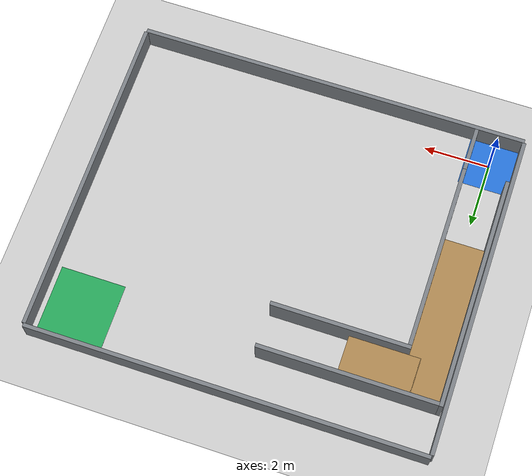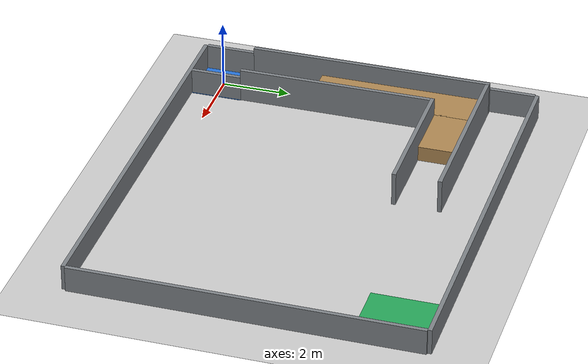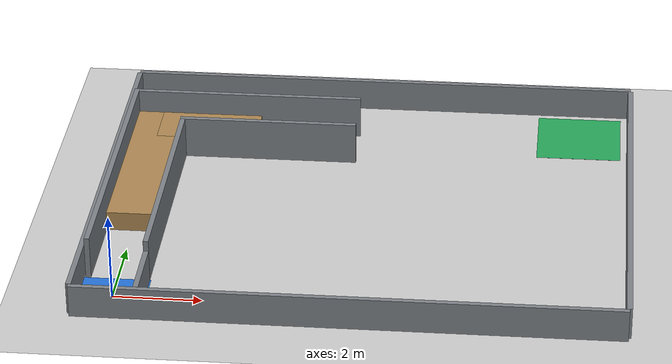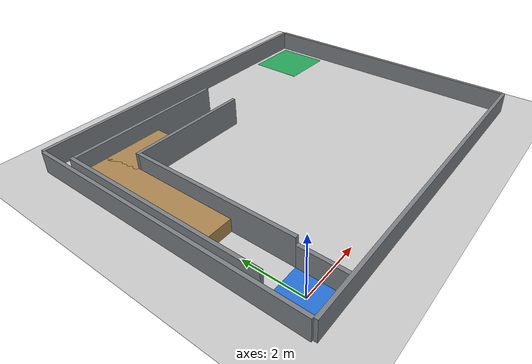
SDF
<sdf version="1.6">
 <world name="competition_arena">
  <include><uri>model://sun</uri></include>
  <include><uri>model://ground_plane</uri></include>
  <model name="arena_boundary">
   <static>true</static>
   <link name="structure">
    <collision name="south_collision">
     <pose>5.25 -0.81 0.375 0 0 0</pose>
     <geometry><box><size>12.12 0.12 0.75</size></box></geometry>
     <surface><friction><ode><mu>0.9</mu><mu2>0.9</mu2></ode></friction></surface>
    </collision>
    <visual name="south_visual">
     <pose>5.25 -0.81 0.375 0 0 0</pose>
     <geometry><box><size>12.12 0.12 0.75</size></box></geometry>
     <material><ambient>0.49 0.51 0.53 1</ambient><diffuse>0.49 0.51 0.53 1</diffuse></material>
    </visual>
    <collision name="north_collision">
     <pose>5.25 9.31 0.375 0 0 0</pose>
     <geometry><box><size>12.12 0.12 0.75</size></box></geometry>
     <surface><friction><ode><mu>0.9</mu><mu2>0.9</mu2></ode></friction></surface>
    </collision>
    <visual name="north_visual">
     <pose>5.25 9.31 0.375 0 0 0</pose>
     <geometry><box><size>12.12 0.12 0.75</size></box></geometry>
     <material><ambient>0.49 0.51 0.53 1</ambient><diffuse>0.49 0.51 0.53 1</diffuse></material>
    </visual>
    <collision name="west_collision">
     <pose>-0.81 4.25 0.375 0 0 1.5707963</pose>
     <geometry><box><size>10 0.12 0.75</size></box></geometry>
     <surface><friction><ode><mu>0.9</mu><mu2>0.9</mu2></ode></friction></surface>
    </collision>
    <visual name="west_visual">
     <pose>-0.81 4.25 0.375 0 0 1.5707963</pose>
     <geometry><box><size>10 0.12 0.75</size></box></geometry>
     <material><ambient>0.49 0.51 0.53 1</ambient><diffuse>0.49 0.51 0.53 1</diffuse></material>
    </visual>
    <collision name="east_collision">
     <pose>11.31 4.25 0.375 0 0 1.5707963</pose>
     <geometry><box><size>10 0.12 0.75</size></box></geometry>
     <surface><friction><ode><mu>0.9</mu><mu2>0.9</mu2></ode></friction></surface>
    </collision>
    <visual name="east_visual">
     <pose>11.31 4.25 0.375 0 0 1.5707963</pose>
     <geometry><box><size>10 0.12 0.75</size></box></geometry>
     <material><ambient>0.49 0.51 0.53 1</ambient><diffuse>0.49 0.51 0.53 1</diffuse></material>
    </visual>
   </link>
  </model>
  <model name="start_pad">
   <static>true</static>
   <link name="structure">
    <visual name="mark_visual">
     <pose>0 0 0.001 0 0 0</pose>
     <geometry><box><size>1.5 1.5 0.002</size></box></geometry>
     <material><ambient>0.15 0.45 0.85 1</ambient><diffuse>0.15 0.45 0.85 1</diffuse></material>
    </visual>
   </link>
  </model>
  <model name="finish_pad">
   <static>true</static>
   <link name="structure">
    <visual name="mark_visual">
     <pose>10.1 8.1 0.001 0 0 0</pose>
     <geometry><box><size>2 2 0.002</size></box></geometry>
     <material><ambient>0.15 0.65 0.35 1</ambient><diffuse>0.15 0.65 0.35 1</diffuse></material>
    </visual>
   </link>
  </model>
  <model name="slope_turn_platform">
   <static>true</static>
   <link name="structure">
    <collision name="long_deck_collision">
     <pose>0 5.3335418 0.225 0 0 0</pose>
     <geometry><box><size>1.2 4.9329165 0.45</size></box></geometry>
     <surface><friction><ode><mu>0.9</mu><mu2>0.9</mu2></ode></friction></surface>
    </collision>
    <visual name="long_deck_visual">
     <pose>0 5.3335418 0.225 0 0 0</pose>
     <geometry><box><size>1.2 4.9329165 0.45</size></box></geometry>
     <material><ambient>0.68 0.53 0.32 1</ambient><diffuse>0.68 0.53 0.32 1</diffuse></material>
    </visual>
    <collision name="cross_deck_collision">
     <pose>1.2 7.2 0.225 0 0 0</pose>
     <geometry><box><size>2.4 1.2 0.45</size></box></geometry>
     <surface><friction><ode><mu>0.9</mu><mu2>0.9</mu2></ode></friction></surface>
    </collision>
    <visual name="cross_deck_visual">
     <pose>1.2 7.2 0.225 0 0 0</pose>
     <geometry><box><size>2.4 1.2 0.45</size></box></geometry>
     <material><ambient>0.68 0.53 0.32 1</ambient><diffuse>0.68 0.53 0.32 1</diffuse></material>
    </visual>
   </link>
  </model>
  <model name="slope_guard_walls">
   <static>true</static>
   <link name="structure">
    <collision name="inner_collision">
     <pose>0.66 3.615 0.5 0 0 1.5707963</pose>
     <geometry><box><size>5.73 0.12 1</size></box></geometry>
     <surface><friction><ode><mu>0.9</mu><mu2>0.9</mu2></ode></friction></surface>
    </collision>
    <visual name="inner_visual">
     <pose>0.66 3.615 0.5 0 0 1.5707963</pose>
     <geometry><box><size>5.73 0.12 1</size></box></geometry>
     <material><ambient>0.49 0.51 0.53 1</ambient><diffuse>0.49 0.51 0.53 1</diffuse></material>
    </visual>
    <collision name="outer_collision">
     <pose>-0.66 4.335 0.5 0 0 1.5707963</pose>
     <geometry><box><size>7.17 0.12 1</size></box></geometry>
     <surface><friction><ode><mu>0.9</mu><mu2>0.9</mu2></ode></friction></surface>
    </collision>
    <visual name="outer_visual">
     <pose>-0.66 4.335 0.5 0 0 1.5707963</pose>
     <geometry><box><size>7.17 0.12 1</size></box></geometry>
     <material><ambient>0.49 0.51 0.53 1</ambient><diffuse>0.49 0.51 0.53 1</diffuse></material>
    </visual>
    <collision name="north_collision">
     <pose>2.1 7.86 0.5 0 0 0</pose>
     <geometry><box><size>5.4 0.12 1</size></box></geometry>
     <surface><friction><ode><mu>0.9</mu><mu2>0.9</mu2></ode></friction></surface>
    </collision>
    <visual name="north_visual">
     <pose>2.1 7.86 0.5 0 0 0</pose>
     <geometry><box><size>5.4 0.12 1</size></box></geometry>
     <material><ambient>0.49 0.51 0.53 1</ambient><diffuse>0.49 0.51 0.53 1</diffuse></material>
    </visual>
    <collision name="south_collision">
     <pose>2.7 6.54 0.5 0 0 0</pose>
     <geometry><box><size>4.2 0.12 1</size></box></geometry>
     <surface><friction><ode><mu>0.9</mu><mu2>0.9</mu2></ode></friction></surface>
    </collision>
    <visual name="south_visual">
     <pose>2.7 6.54 0.5 0 0 0</pose>
     <geometry><box><size>4.2 0.12 1</size></box></geometry>
     <material><ambient>0.49 0.51 0.53 1</ambient><diffuse>0.49 0.51 0.53 1</diffuse></material>
    </visual>
   </link>
  </model>
  <model name="start_entry_partition">
   <static>true</static>
   <link name="structure">
    <collision name="east_gate_collision">
     <pose>0.66 0 0.375 0 0 1.5707963</pose>
     <geometry><box><size>1.5 0.12 0.75</size></box></geometry>
     <surface><friction><ode><mu>0.9</mu><mu2>0.9</mu2></ode></friction></surface>
    </collision>
    <visual name="east_gate_visual">
     <pose>0.66 0 0.375 0 0 1.5707963</pose>
     <geometry><box><size>1.5 0.12 0.75</size></box></geometry>
     <material><ambient>0.49 0.51 0.53 1</ambient><diffuse>0.49 0.51 0.53 1</diffuse></material>
    </visual>
   </link>
  </model>
 </world>
</sdf>
